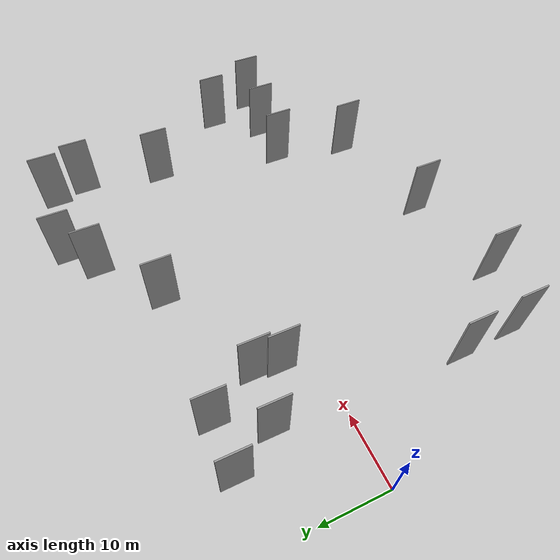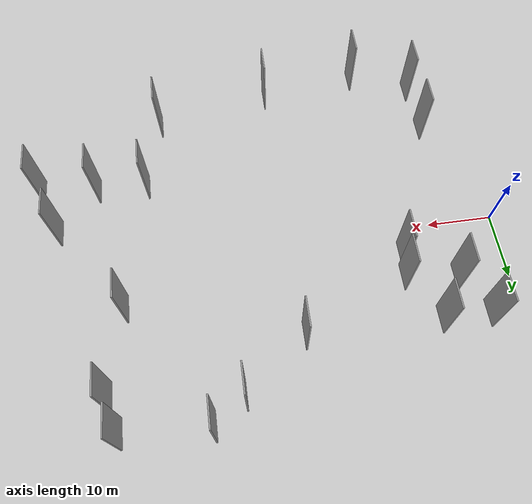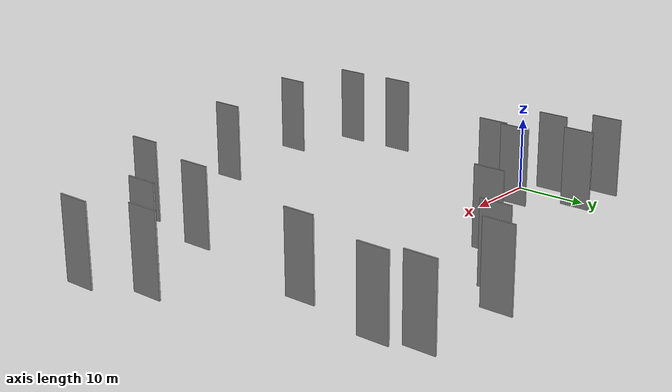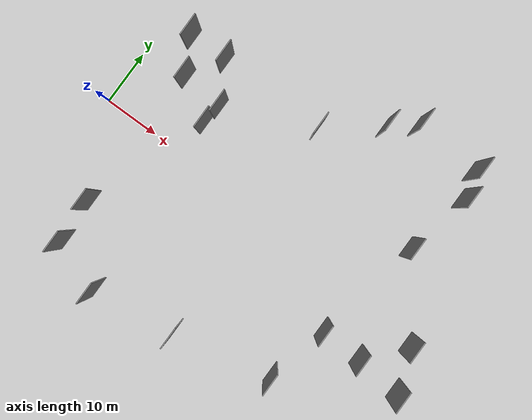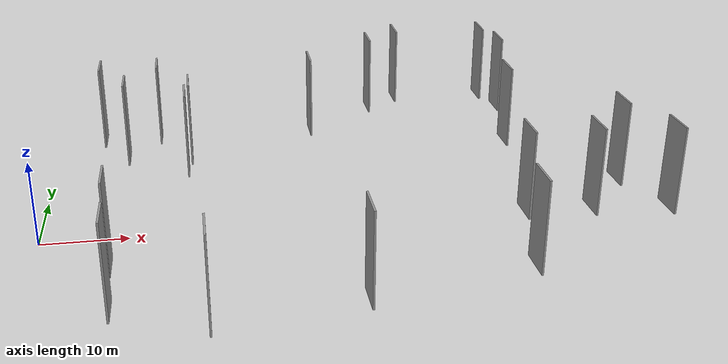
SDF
<sdf version="1.6">
 <world name="default">
  <scene>
   <sky><clouds><speed>12</speed></clouds></sky>
   <ambient>0.4 0.4 0.4 1</ambient>
   <background>0.7 0.7 0.7 1</background>
   <shadows>1</shadows>
  </scene>
  <gravity>0 0 -9.8066</gravity>
  <magnetic_field>6e-06 2.3e-05 -4.2e-05</magnetic_field>
  <physics default="0" name="default_physics" type="ode">
   <ode>
    <solver>
     <type>quick</type>
     <iters>10</iters>
     <sor>1.0</sor>
     <use_dynamic_moi_rescaling>0</use_dynamic_moi_rescaling>
    </solver>
    <constraints>
     <cfm>0</cfm>
     <erp>0.2</erp>
     <contact_max_correcting_vel>100</contact_max_correcting_vel>
     <contact_surface_layer>0.001</contact_surface_layer>
    </constraints>
   </ode>
   <max_step_size>0.004</max_step_size>
   <real_time_factor>1</real_time_factor>
   <real_time_update_rate>250</real_time_update_rate>
  </physics>
  <light name="sun" type="directional">
   <pose>0 0 10 0 0 0</pose>
   <diffuse>0.8 0.8 0.8 1</diffuse>
   <specular>0.2 0.2 0.2 1</specular>
   <attenuation>
    <range>1000</range>
    <constant>0.9</constant>
    <linear>0.01</linear>
    <quadratic>0.001</quadratic>
   </attenuation>
   <direction>-0.5 0.1 -0.9</direction>
  </light>
  <model name="grey_wall_1">
   <static>1</static>
   <pose>59.9722 -9.9413 5.0 0.000000 0.000000 1.570796</pose>
   <link name="link">
    <pose>0 0 5.00 0 0 0</pose>
    <collision name="collision"><geometry><box><size>4.00 0.2 10.00</size></box></geometry></collision>
    <visual name="visual">
     <cast_shadows>0</cast_shadows>
     <geometry><box><size>4.00 0.2 10.00</size></box></geometry>
     <material>
      <script>
       <uri>model://grey_wall/materials/scripts</uri>
       <uri>model://grey_wall/materials/textures</uri>
       <name>vrc/grey_wall</name>
      </script>
     </material>
    </visual>
   </link>
  </model>
  <model name="grey_wall_2">
   <static>1</static>
   <pose>32.5142 16.6050 5.0 0.000000 0.000000 1.570796</pose>
   <link name="link">
    <pose>0 0 5.00 0 0 0</pose>
    <collision name="collision"><geometry><box><size>4.00 0.2 10.00</size></box></geometry></collision>
    <visual name="visual">
     <cast_shadows>0</cast_shadows>
     <geometry><box><size>4.00 0.2 10.00</size></box></geometry>
     <material>
      <script>
       <uri>model://grey_wall/materials/scripts</uri>
       <uri>model://grey_wall/materials/textures</uri>
       <name>vrc/grey_wall</name>
      </script>
     </material>
    </visual>
   </link>
  </model>
  <model name="grey_wall_3">
   <static>1</static>
   <pose>65.5373 -3.3900 5.0 0.000000 0.000000 1.570796</pose>
   <link name="link">
    <pose>0 0 5.00 0 0 0</pose>
    <collision name="collision"><geometry><box><size>4.00 0.2 10.00</size></box></geometry></collision>
    <visual name="visual">
     <cast_shadows>0</cast_shadows>
     <geometry><box><size>4.00 0.2 10.00</size></box></geometry>
     <material>
      <script>
       <uri>model://grey_wall/materials/scripts</uri>
       <uri>model://grey_wall/materials/textures</uri>
       <name>vrc/grey_wall</name>
      </script>
     </material>
    </visual>
   </link>
  </model>
  <model name="grey_wall_4">
   <static>1</static>
   <pose>13.6850 16.7696 5.0 0.000000 0.000000 1.570796</pose>
   <link name="link">
    <pose>0 0 5.00 0 0 0</pose>
    <collision name="collision"><geometry><box><size>4.00 0.2 10.00</size></box></geometry></collision>
    <visual name="visual">
     <cast_shadows>0</cast_shadows>
     <geometry><box><size>4.00 0.2 10.00</size></box></geometry>
     <material>
      <script>
       <uri>model://grey_wall/materials/scripts</uri>
       <uri>model://grey_wall/materials/textures</uri>
       <name>vrc/grey_wall</name>
      </script>
     </material>
    </visual>
   </link>
  </model>
  <model name="grey_wall_5">
   <static>1</static>
   <pose>18.4142 -26.3215 5.0 0.000000 0.000000 1.570796</pose>
   <link name="link">
    <pose>0 0 5.00 0 0 0</pose>
    <collision name="collision"><geometry><box><size>4.00 0.2 10.00</size></box></geometry></collision>
    <visual name="visual">
     <cast_shadows>0</cast_shadows>
     <geometry><box><size>4.00 0.2 10.00</size></box></geometry>
     <material>
      <script>
       <uri>model://grey_wall/materials/scripts</uri>
       <uri>model://grey_wall/materials/textures</uri>
       <name>vrc/grey_wall</name>
      </script>
     </material>
    </visual>
   </link>
  </model>
  <model name="grey_wall_6">
   <static>1</static>
   <pose>52.5532 -9.6715 5.0 0.000000 0.000000 1.570796</pose>
   <link name="link">
    <pose>0 0 5.00 0 0 0</pose>
    <collision name="collision"><geometry><box><size>4.00 0.2 10.00</size></box></geometry></collision>
    <visual name="visual">
     <cast_shadows>0</cast_shadows>
     <geometry><box><size>4.00 0.2 10.00</size></box></geometry>
     <material>
      <script>
       <uri>model://grey_wall/materials/scripts</uri>
       <uri>model://grey_wall/materials/textures</uri>
       <name>vrc/grey_wall</name>
      </script>
     </material>
    </visual>
   </link>
  </model>
  <model name="grey_wall_7">
   <static>1</static>
   <pose>9.1680 -14.9963 5.0 0.000000 0.000000 1.570796</pose>
   <link name="link">
    <pose>0 0 5.00 0 0 0</pose>
    <collision name="collision"><geometry><box><size>4.00 0.2 10.00</size></box></geometry></collision>
    <visual name="visual">
     <cast_shadows>0</cast_shadows>
     <geometry><box><size>4.00 0.2 10.00</size></box></geometry>
     <material>
      <script>
       <uri>model://grey_wall/materials/scripts</uri>
       <uri>model://grey_wall/materials/textures</uri>
       <name>vrc/grey_wall</name>
      </script>
     </material>
    </visual>
   </link>
  </model>
  <model name="grey_wall_8">
   <static>1</static>
   <pose>6.8715 16.7685 5.0 0.000000 0.000000 1.570796</pose>
   <link name="link">
    <pose>0 0 5.00 0 0 0</pose>
    <collision name="collision"><geometry><box><size>4.00 0.2 10.00</size></box></geometry></collision>
    <visual name="visual">
     <cast_shadows>0</cast_shadows>
     <geometry><box><size>4.00 0.2 10.00</size></box></geometry>
     <material>
      <script>
       <uri>model://grey_wall/materials/scripts</uri>
       <uri>model://grey_wall/materials/textures</uri>
       <name>vrc/grey_wall</name>
      </script>
     </material>
    </visual>
   </link>
  </model>
  <model name="grey_wall_9">
   <static>1</static>
   <pose>33.0164 -24.2693 5.0 0.000000 0.000000 1.570796</pose>
   <link name="link">
    <pose>0 0 5.00 0 0 0</pose>
    <collision name="collision"><geometry><box><size>4.00 0.2 10.00</size></box></geometry></collision>
    <visual name="visual">
     <cast_shadows>0</cast_shadows>
     <geometry><box><size>4.00 0.2 10.00</size></box></geometry>
     <material>
      <script>
       <uri>model://grey_wall/materials/scripts</uri>
       <uri>model://grey_wall/materials/textures</uri>
       <name>vrc/grey_wall</name>
      </script>
     </material>
    </visual>
   </link>
  </model>
  <model name="grey_wall_10">
   <static>1</static>
   <pose>68.3442 -10.9178 5.0 0.000000 0.000000 1.570796</pose>
   <link name="link">
    <pose>0 0 5.00 0 0 0</pose>
    <collision name="collision"><geometry><box><size>4.00 0.2 10.00</size></box></geometry></collision>
    <visual name="visual">
     <cast_shadows>0</cast_shadows>
     <geometry><box><size>4.00 0.2 10.00</size></box></geometry>
     <material>
      <script>
       <uri>model://grey_wall/materials/scripts</uri>
       <uri>model://grey_wall/materials/textures</uri>
       <name>vrc/grey_wall</name>
      </script>
     </material>
    </visual>
   </link>
  </model>
  <model name="grey_wall_11">
   <static>1</static>
   <pose>16.9651 6.4746 5.0 0.000000 0.000000 1.570796</pose>
   <link name="link">
    <pose>0 0 5.00 0 0 0</pose>
    <collision name="collision"><geometry><box><size>4.00 0.2 10.00</size></box></geometry></collision>
    <visual name="visual">
     <cast_shadows>0</cast_shadows>
     <geometry><box><size>4.00 0.2 10.00</size></box></geometry>
     <material>
      <script>
       <uri>model://grey_wall/materials/scripts</uri>
       <uri>model://grey_wall/materials/textures</uri>
       <name>vrc/grey_wall</name>
      </script>
     </material>
    </visual>
   </link>
  </model>
  <model name="grey_wall_12">
   <static>1</static>
   <pose>56.1804 9.6428 5.0 0.000000 0.000000 1.570796</pose>
   <link name="link">
    <pose>0 0 5.00 0 0 0</pose>
    <collision name="collision"><geometry><box><size>4.00 0.2 10.00</size></box></geometry></collision>
    <visual name="visual">
     <cast_shadows>0</cast_shadows>
     <geometry><box><size>4.00 0.2 10.00</size></box></geometry>
     <material>
      <script>
       <uri>model://grey_wall/materials/scripts</uri>
       <uri>model://grey_wall/materials/textures</uri>
       <name>vrc/grey_wall</name>
      </script>
     </material>
    </visual>
   </link>
  </model>
  <model name="grey_wall_13">
   <static>1</static>
   <pose>17.4186 9.9697 5.0 0.000000 0.000000 1.570796</pose>
   <link name="link">
    <pose>0 0 5.00 0 0 0</pose>
    <collision name="collision"><geometry><box><size>4.00 0.2 10.00</size></box></geometry></collision>
    <visual name="visual">
     <cast_shadows>0</cast_shadows>
     <geometry><box><size>4.00 0.2 10.00</size></box></geometry>
     <material>
      <script>
       <uri>model://grey_wall/materials/scripts</uri>
       <uri>model://grey_wall/materials/textures</uri>
       <name>vrc/grey_wall</name>
      </script>
     </material>
    </visual>
   </link>
  </model>
  <model name="grey_wall_14">
   <static>1</static>
   <pose>9.9808 10.8772 5.0 0.000000 0.000000 1.570796</pose>
   <link name="link">
    <pose>0 0 5.00 0 0 0</pose>
    <collision name="collision"><geometry><box><size>4.00 0.2 10.00</size></box></geometry></collision>
    <visual name="visual">
     <cast_shadows>0</cast_shadows>
     <geometry><box><size>4.00 0.2 10.00</size></box></geometry>
     <material>
      <script>
       <uri>model://grey_wall/materials/scripts</uri>
       <uri>model://grey_wall/materials/textures</uri>
       <name>vrc/grey_wall</name>
      </script>
     </material>
    </visual>
   </link>
  </model>
  <model name="grey_wall_15">
   <static>1</static>
   <pose>57.3268 26.0810 5.0 0.000000 0.000000 1.570796</pose>
   <link name="link">
    <pose>0 0 5.00 0 0 0</pose>
    <collision name="collision"><geometry><box><size>4.00 0.2 10.00</size></box></geometry></collision>
    <visual name="visual">
     <cast_shadows>0</cast_shadows>
     <geometry><box><size>4.00 0.2 10.00</size></box></geometry>
     <material>
      <script>
       <uri>model://grey_wall/materials/scripts</uri>
       <uri>model://grey_wall/materials/textures</uri>
       <name>vrc/grey_wall</name>
      </script>
     </material>
    </visual>
   </link>
  </model>
  <model name="grey_wall_16">
   <static>1</static>
   <pose>58.5531 21.3435 5.0 0.000000 0.000000 1.570796</pose>
   <link name="link">
    <pose>0 0 5.00 0 0 0</pose>
    <collision name="collision"><geometry><box><size>4.00 0.2 10.00</size></box></geometry></collision>
    <visual name="visual">
     <cast_shadows>0</cast_shadows>
     <geometry><box><size>4.00 0.2 10.00</size></box></geometry>
     <material>
      <script>
       <uri>model://grey_wall/materials/scripts</uri>
       <uri>model://grey_wall/materials/textures</uri>
       <name>vrc/grey_wall</name>
      </script>
     </material>
    </visual>
   </link>
  </model>
  <model name="grey_wall_17">
   <static>1</static>
   <pose>41.2168 23.4798 5.0 0.000000 0.000000 1.570796</pose>
   <link name="link">
    <pose>0 0 5.00 0 0 0</pose>
    <collision name="collision"><geometry><box><size>4.00 0.2 10.00</size></box></geometry></collision>
    <visual name="visual">
     <cast_shadows>0</cast_shadows>
     <geometry><box><size>4.00 0.2 10.00</size></box></geometry>
     <material>
      <script>
       <uri>model://grey_wall/materials/scripts</uri>
       <uri>model://grey_wall/materials/textures</uri>
       <name>vrc/grey_wall</name>
      </script>
     </material>
    </visual>
   </link>
  </model>
  <model name="grey_wall_18">
   <static>1</static>
   <pose>9.5256 -22.8456 5.0 0.000000 0.000000 1.570796</pose>
   <link name="link">
    <pose>0 0 5.00 0 0 0</pose>
    <collision name="collision"><geometry><box><size>4.00 0.2 10.00</size></box></geometry></collision>
    <visual name="visual">
     <cast_shadows>0</cast_shadows>
     <geometry><box><size>4.00 0.2 10.00</size></box></geometry>
     <material>
      <script>
       <uri>model://grey_wall/materials/scripts</uri>
       <uri>model://grey_wall/materials/textures</uri>
       <name>vrc/grey_wall</name>
      </script>
     </material>
    </visual>
   </link>
  </model>
  <model name="grey_wall_19">
   <static>1</static>
   <pose>50.0445 -20.8478 5.0 0.000000 0.000000 1.570796</pose>
   <link name="link">
    <pose>0 0 5.00 0 0 0</pose>
    <collision name="collision"><geometry><box><size>4.00 0.2 10.00</size></box></geometry></collision>
    <visual name="visual">
     <cast_shadows>0</cast_shadows>
     <geometry><box><size>4.00 0.2 10.00</size></box></geometry>
     <material>
      <script>
       <uri>model://grey_wall/materials/scripts</uri>
       <uri>model://grey_wall/materials/textures</uri>
       <name>vrc/grey_wall</name>
      </script>
     </material>
    </visual>
   </link>
  </model>
  <model name="grey_wall_20">
   <static>1</static>
   <pose>45.4521 26.7767 5.0 0.000000 0.000000 1.570796</pose>
   <link name="link">
    <pose>0 0 5.00 0 0 0</pose>
    <collision name="collision"><geometry><box><size>4.00 0.2 10.00</size></box></geometry></collision>
    <visual name="visual">
     <cast_shadows>0</cast_shadows>
     <geometry><box><size>4.00 0.2 10.00</size></box></geometry>
     <material>
      <script>
       <uri>model://grey_wall/materials/scripts</uri>
       <uri>model://grey_wall/materials/textures</uri>
       <name>vrc/grey_wall</name>
      </script>
     </material>
    </visual>
   </link>
  </model>
 </world>
</sdf>
